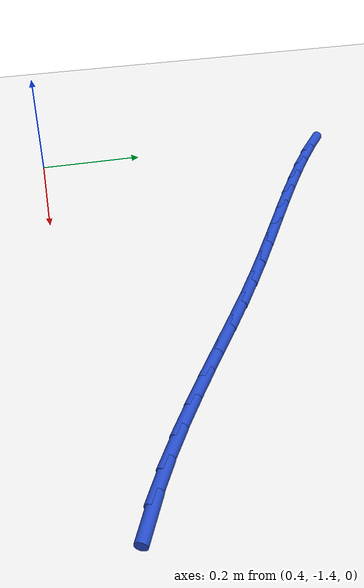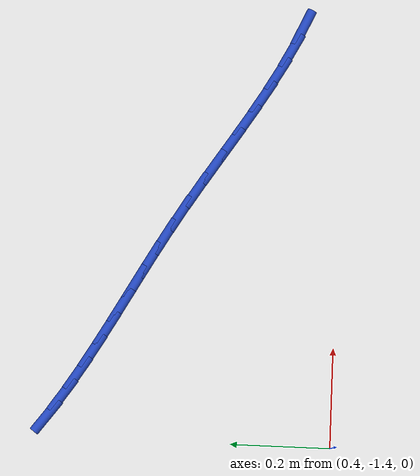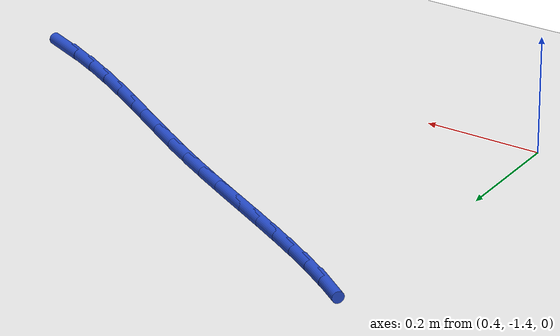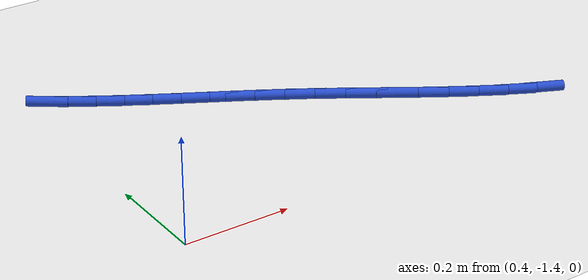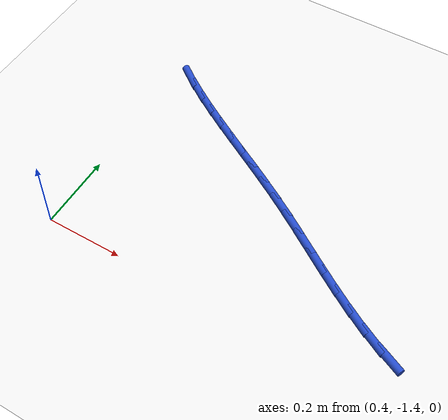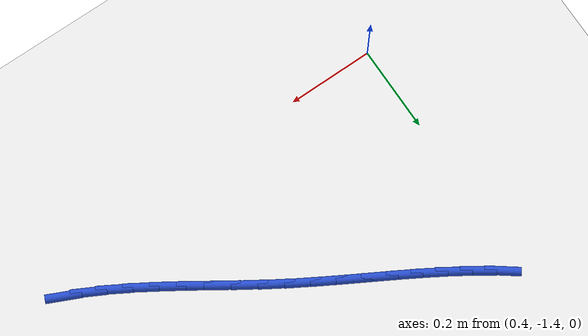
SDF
<sdf version="1.6">
 <world name="default">
  <model name="ground_plane">
   <static>1</static>
   <link name="link">
    <collision name="collision">
     <geometry><plane><normal>0 0 1</normal><size>100 100</size></plane></geometry>
     <surface><friction><ode><mu>100</mu><mu2>50</mu2></ode></friction></surface>
    </collision>
    <visual name="visual">
     <cast_shadows>0</cast_shadows>
     <geometry><plane><normal>0 0 1</normal><size>100 100</size></plane></geometry>
     <material>
      <script><uri>file://media/materials/scripts/gazebo.material</uri><name>Gazebo/WhiteGlow</name></script>
     </material>
    </visual>
   </link>
  </model>
  <model name="line">
   <link name="link_105">
    <pose>1.2525025663087406 -1.3156061704827287 0.01 0 1.57 -0.42910748350797895</pose>
    <collision name="collision">
     <geometry><cylinder><radius>0.01</radius><length>0.08</length></cylinder></geometry>
    </collision>
    <visual name="visual">
     <material>
      <script><name>Gazebo/Blue</name><uri>file://media/materials/scripts/gazebo.material</uri></script>
     </material>
     <geometry><cylinder><radius>0.01</radius><length>0.08</length></cylinder></geometry>
    </visual>
   </link>
   <link name="link_106">
    <pose>1.203240758778024 -1.2930668628273017 0.01 0 1.57 -0.4847544613992056</pose>
    <collision name="collision">
     <geometry><cylinder><radius>0.01</radius><length>0.08</length></cylinder></geometry>
    </collision>
    <visual name="visual">
     <material>
      <script><name>Gazebo/Blue</name><uri>file://media/materials/scripts/gazebo.material</uri></script>
     </material>
     <geometry><cylinder><radius>0.01</radius><length>0.08</length></cylinder></geometry>
    </visual>
   </link>
   <link name="link_107">
    <pose>1.1539768840500622 -1.267121108419253 0.01 0 1.57 -0.5264336067446538</pose>
    <collision name="collision">
     <geometry><cylinder><radius>0.01</radius><length>0.08</length></cylinder></geometry>
    </collision>
    <visual name="visual">
     <material>
      <script><name>Gazebo/Blue</name><uri>file://media/materials/scripts/gazebo.material</uri></script>
     </material>
     <geometry><cylinder><radius>0.01</radius><length>0.08</length></cylinder></geometry>
    </visual>
   </link>
   <link name="link_108">
    <pose>1.1047350383860362 -1.2385048868538335 0.01 0 1.57 -0.5557201853110415</pose>
    <collision name="collision">
     <geometry><cylinder><radius>0.01</radius><length>0.08</length></cylinder></geometry>
    </collision>
    <visual name="visual">
     <material>
      <script><name>Gazebo/Blue</name><uri>file://media/materials/scripts/gazebo.material</uri></script>
     </material>
     <geometry><cylinder><radius>0.01</radius><length>0.08</length></cylinder></geometry>
    </visual>
   </link>
   <link name="link_109">
    <pose>1.0555393180471258 -1.2079541777262923 0.01 0 1.57 -0.5737612559834847</pose>
    <collision name="collision">
     <geometry><cylinder><radius>0.01</radius><length>0.08</length></cylinder></geometry>
    </collision>
    <visual name="visual">
     <material>
      <script><name>Gazebo/Blue</name><uri>file://media/materials/scripts/gazebo.material</uri></script>
     </material>
     <geometry><cylinder><radius>0.01</radius><length>0.08</length></cylinder></geometry>
    </visual>
   </link>
   <link name="link_110">
    <pose>1.0064138192945136 -1.1762049606318812 0.01 0 1.57 -0.581255611438498</pose>
    <collision name="collision">
     <geometry><cylinder><radius>0.01</radius><length>0.08</length></cylinder></geometry>
    </collision>
    <visual name="visual">
     <material>
      <script><name>Gazebo/Blue</name><uri>file://media/materials/scripts/gazebo.material</uri></script>
     </material>
     <geometry><cylinder><radius>0.01</radius><length>0.08</length></cylinder></geometry>
    </visual>
   </link>
   <link name="link_111">
    <pose>0.9573826383893798 -1.1439932151658498 0.01 0 1.57 -0.5784563183907852</pose>
    <collision name="collision">
     <geometry><cylinder><radius>0.01</radius><length>0.08</length></cylinder></geometry>
    </collision>
    <visual name="visual">
     <material>
      <script><name>Gazebo/Blue</name><uri>file://media/materials/scripts/gazebo.material</uri></script>
     </material>
     <geometry><cylinder><radius>0.01</radius><length>0.08</length></cylinder></geometry>
    </visual>
   </link>
   <link name="link_112">
    <pose>0.9084698715929047 -1.1120549209234483 0.01 0 1.57 -0.565169749451599</pose>
    <collision name="collision">
     <geometry><cylinder><radius>0.01</radius><length>0.08</length></cylinder></geometry>
    </collision>
    <visual name="visual">
     <material>
      <script><name>Gazebo/Blue</name><uri>file://media/materials/scripts/gazebo.material</uri></script>
     </material>
     <geometry><cylinder><radius>0.01</radius><length>0.08</length></cylinder></geometry>
    </visual>
   </link>
   <link name="link_113">
    <pose>0.8596996155036544 -1.0811260526175424 0.01 0 1.57 -0.543972801603081</pose>
    <collision name="collision">
     <geometry><cylinder><radius>0.01</radius><length>0.08</length></cylinder></geometry>
    </collision>
    <visual name="visual">
     <material>
      <script><name>Gazebo/Blue</name><uri>file://media/materials/scripts/gazebo.material</uri></script>
     </material>
     <geometry><cylinder><radius>0.01</radius><length>0.08</length></cylinder></geometry>
    </visual>
   </link>
   <link name="link_114">
    <pose>0.8111101680898302 -1.0517370734914522 0.01 0 1.57 -0.526299704603339</pose>
    <collision name="collision">
     <geometry><cylinder><radius>0.01</radius><length>0.08</length></cylinder></geometry>
    </collision>
    <visual name="visual">
     <material>
      <script><name>Gazebo/Blue</name><uri>file://media/materials/scripts/gazebo.material</uri></script>
     </material>
     <geometry><cylinder><radius>0.01</radius><length>0.08</length></cylinder></geometry>
    </visual>
   </link>
   <link name="link_115">
    <pose>0.7627918109621429 -1.0236661788706827 0.01 0 1.57 -0.5151985862286446</pose>
    <collision name="collision">
     <geometry><cylinder><radius>0.01</radius><length>0.08</length></cylinder></geometry>
    </collision>
    <visual name="visual">
     <material>
      <script><name>Gazebo/Blue</name><uri>file://media/materials/scripts/gazebo.material</uri></script>
     </material>
     <geometry><cylinder><radius>0.01</radius><length>0.08</length></cylinder></geometry>
    </visual>
   </link>
   <link name="link_116">
    <pose>0.7148467169199861 -0.9965194838009069 0.01 0 1.57 -0.5110233438353999</pose>
    <collision name="collision">
     <geometry><cylinder><radius>0.01</radius><length>0.08</length></cylinder></geometry>
    </collision>
    <visual name="visual">
     <material>
      <script><name>Gazebo/Blue</name><uri>file://media/materials/scripts/gazebo.material</uri></script>
     </material>
     <geometry><cylinder><radius>0.01</radius><length>0.08</length></cylinder></geometry>
    </visual>
   </link>
   <link name="link_117">
    <pose>0.6673770587627524 -0.9699031033277975 0.01 0 1.57 -0.514059275481157</pose>
    <collision name="collision">
     <geometry><cylinder><radius>0.01</radius><length>0.08</length></cylinder></geometry>
    </collision>
    <visual name="visual">
     <material>
      <script><name>Gazebo/Blue</name><uri>file://media/materials/scripts/gazebo.material</uri></script>
     </material>
     <geometry><cylinder><radius>0.01</radius><length>0.08</length></cylinder></geometry>
    </visual>
   </link>
   <link name="link_118">
    <pose>0.6204850092898365 -0.9434231524970284 0.01 0 1.57 -0.5245191580208147</pose>
    <collision name="collision">
     <geometry><cylinder><radius>0.01</radius><length>0.08</length></cylinder></geometry>
    </collision>
    <visual name="visual">
     <material>
      <script><name>Gazebo/Blue</name><uri>file://media/materials/scripts/gazebo.material</uri></script>
     </material>
     <geometry><cylinder><radius>0.01</radius><length>0.08</length></cylinder></geometry>
    </visual>
   </link>
   <link name="link_119">
    <pose>0.5742727413006313 -0.9166857463542722 0.01 0 1.57 -0.542529918557302</pose>
    <collision name="collision">
     <geometry><cylinder><radius>0.01</radius><length>0.08</length></cylinder></geometry>
    </collision>
    <visual name="visual">
     <material>
      <script><name>Gazebo/Blue</name><uri>file://media/materials/scripts/gazebo.material</uri></script>
     </material>
     <geometry><cylinder><radius>0.01</radius><length>0.08</length></cylinder></geometry>
    </visual>
   </link>
   <link name="link_120">
    <pose>0.5288424275945299 -0.889296999945202 0.01 0 1.57 -0.5681084885154742</pose>
    <collision name="collision">
     <geometry><cylinder><radius>0.01</radius><length>0.08</length></cylinder></geometry>
    </collision>
    <visual name="visual">
     <material>
      <script><name>Gazebo/Blue</name><uri>file://media/materials/scripts/gazebo.material</uri></script>
     </material>
     <geometry><cylinder><radius>0.01</radius><length>0.08</length></cylinder></geometry>
    </visual>
   </link>
   <link name="link_121">
    <pose>0.4842962409709259 -0.860863028315491 0.01 0 1.57 -0.6011275482398308</pose>
    <collision name="collision">
     <geometry><cylinder><radius>0.01</radius><length>0.08</length></cylinder></geometry>
    </collision>
    <visual name="visual">
     <material>
      <script><name>Gazebo/Blue</name><uri>file://media/materials/scripts/gazebo.material</uri></script>
     </material>
     <geometry><cylinder><radius>0.01</radius><length>0.08</length></cylinder></geometry>
    </visual>
   </link>
   <link name="link_122">
    <pose>0.44073635422921176 -0.8309899465108116 0.01 0 1.57 -0.6412749774052866</pose>
    <collision name="collision">
     <geometry><cylinder><radius>0.01</radius><length>0.08</length></cylinder></geometry>
    </collision>
    <visual name="visual">
     <material>
      <script><name>Gazebo/Blue</name><uri>file://media/materials/scripts/gazebo.material</uri></script>
     </material>
     <geometry><cylinder><radius>0.01</radius><length>0.08</length></cylinder></geometry>
    </visual>
   </link>
  </model>
 </world>
</sdf>
